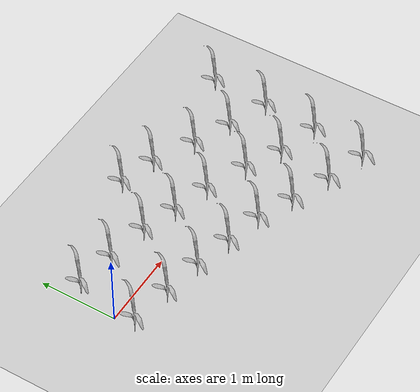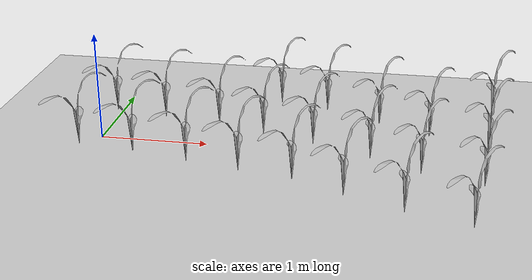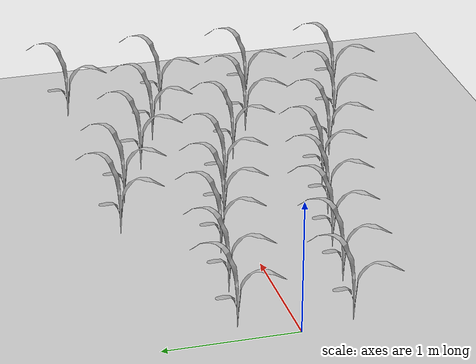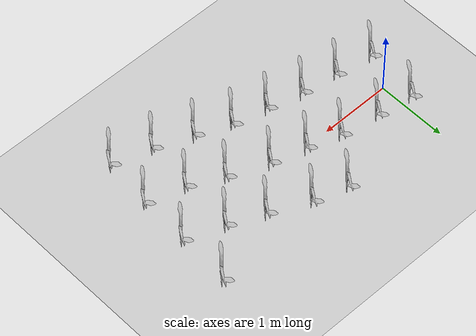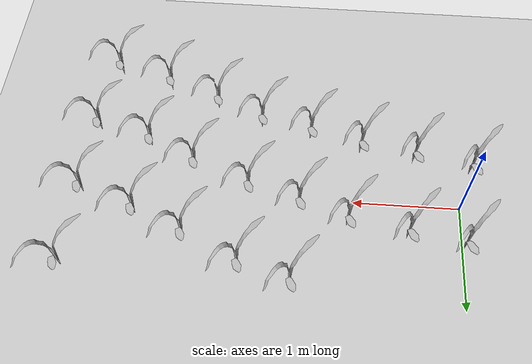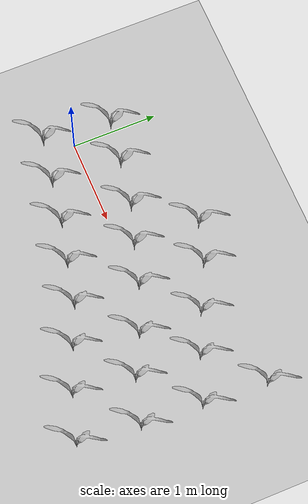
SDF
<sdf version="1.7">
 <world name="default">
  <model name="ground_plane">
   <static>1</static>
   <link name="link">
    <collision name="collision">
     <geometry><plane><normal>0 0 1</normal><size>100 100</size></plane></geometry>
     <surface>
      <contact><collide_bitmask>65535</collide_bitmask></contact>
      <friction><ode><mu>100</mu><mu2>50</mu2></ode></friction>
     </surface>
    </collision>
    <visual name="visual">
     <cast_shadows>0</cast_shadows>
     <geometry><plane><normal>0 0 1</normal><size>100 100</size></plane></geometry>
     <material>
      <script><uri>file://media/materials/scripts/gazebo.material</uri><name>Gazebo/Grey</name></script>
     </material>
    </visual>
   </link>
  </model>
  <model name="field_row_full_double">
   <model name="maize_02">
    <pose>-4.84632 -3.95774 0.000249 0 -0 0</pose>
    <link name="maize_02_link">
     <inertial>
      <pose>0 0 0.01 0 -0 0</pose>
      <mass>0.3</mass>
      <inertia>
       <ixx>0.00334167</ixx>
       <ixy>0</ixy>
       <ixz>0</ixz>
       <iyy>0.00334167</iyy>
       <iyz>0</iyz>
       <izz>1.66667e-05</izz>
      </inertia>
      <pose>0 0 0.1 0 -0 0</pose>
     </inertial>
     <collision name="collision">
      <pose>0 0 0.2 0 -0 0</pose>
      <geometry><box><size>0.02 0.02 0.4</size></box></geometry>
      <surface><friction><ode><mu>10</mu><mu2>10</mu2></ode></friction></surface>
     </collision>
     <visual name="visual">
      <geometry>
       <mesh><uri>model://maize_02/meshes/maize_02.dae</uri><scale>0.683166 0.683166 0.683166</scale></mesh>
      </geometry>
     </visual>
    </link>
   </model>
   <model name="maize_02_clone">
    <pose>-4.3125 -4.01112 0.000249 0 -0 0</pose>
    <link name="maize_02_link">
     <inertial>
      <pose>0 0 0.01 0 -0 0</pose>
      <mass>0.3</mass>
      <inertia>
       <ixx>0.00334167</ixx>
       <ixy>0</ixy>
       <ixz>0</ixz>
       <iyy>0.00334167</iyy>
       <iyz>0</iyz>
       <izz>1.66667e-05</izz>
      </inertia>
      <pose>0 0 0.1 0 -0 0</pose>
     </inertial>
     <collision name="collision">
      <pose>0 0 0.2 0 -0 0</pose>
      <geometry><box><size>0.02 0.02 0.4</size></box></geometry>
      <surface><friction><ode><mu>10</mu><mu2>10</mu2></ode></friction></surface>
     </collision>
     <visual name="visual">
      <geometry>
       <mesh><uri>model://maize_02/meshes/maize_02.dae</uri><scale>0.683166 0.683166 0.683166</scale></mesh>
      </geometry>
     </visual>
    </link>
   </model>
   <model name="maize_02_clone_0">
    <pose>-3.80156 -4.05688 0.000249 0 -0 0</pose>
    <link name="maize_02_link">
     <inertial>
      <pose>0 0 0.01 0 -0 0</pose>
      <mass>0.3</mass>
      <inertia>
       <ixx>0.00334167</ixx>
       <ixy>0</ixy>
       <ixz>0</ixz>
       <iyy>0.00334167</iyy>
       <iyz>0</iyz>
       <izz>1.66667e-05</izz>
      </inertia>
      <pose>0 0 0.1 0 -0 0</pose>
     </inertial>
     <collision name="collision">
      <pose>0 0 0.2 0 -0 0</pose>
      <geometry><box><size>0.02 0.02 0.4</size></box></geometry>
      <surface><friction><ode><mu>10</mu><mu2>10</mu2></ode></friction></surface>
     </collision>
     <visual name="visual">
      <geometry>
       <mesh><uri>model://maize_02/meshes/maize_02.dae</uri><scale>0.683166 0.683166 0.683166</scale></mesh>
      </geometry>
     </visual>
    </link>
   </model>
   <model name="maize_02_clone_1">
    <pose>-3.30717 -4.14016 0.000249 0 -0 0</pose>
    <link name="maize_02_link">
     <inertial>
      <pose>0 0 0.01 0 -0 0</pose>
      <mass>0.3</mass>
      <inertia>
       <ixx>0.00334167</ixx>
       <ixy>0</ixy>
       <ixz>0</ixz>
       <iyy>0.00334167</iyy>
       <iyz>0</iyz>
       <izz>1.66667e-05</izz>
      </inertia>
      <pose>0 0 0.1 0 -0 0</pose>
     </inertial>
     <collision name="collision">
      <pose>0 0 0.2 0 -0 0</pose>
      <geometry><box><size>0.02 0.02 0.4</size></box></geometry>
      <surface><friction><ode><mu>10</mu><mu2>10</mu2></ode></friction></surface>
     </collision>
     <visual name="visual">
      <geometry>
       <mesh><uri>model://maize_02/meshes/maize_02.dae</uri><scale>0.683166 0.683166 0.683166</scale></mesh>
      </geometry>
     </visual>
    </link>
   </model>
   <model name="maize_02_clone_10">
    <pose>-1.25683 -3.93716 0.000249 0 -0 0</pose>
    <link name="maize_02_link">
     <inertial>
      <pose>0 0 0.01 0 -0 0</pose>
      <mass>0.3</mass>
      <inertia>
       <ixx>0.00334167</ixx>
       <ixy>0</ixy>
       <ixz>0</ixz>
       <iyy>0.00334167</iyy>
       <iyz>0</iyz>
       <izz>1.66667e-05</izz>
      </inertia>
      <pose>0 0 0.1 0 -0 0</pose>
     </inertial>
     <collision name="collision">
      <pose>0 0 0.2 0 -0 0</pose>
      <geometry><box><size>0.02 0.02 0.4</size></box></geometry>
      <surface><friction><ode><mu>10</mu><mu2>10</mu2></ode></friction></surface>
     </collision>
     <visual name="visual">
      <geometry>
       <mesh><uri>model://maize_02/meshes/maize_02.dae</uri><scale>0.683166 0.683166 0.683166</scale></mesh>
      </geometry>
     </visual>
    </link>
   </model>
   <model name="maize_02_clone_11">
    <pose>-1.79479 -3.8255 0.000249 0 -0 0</pose>
    <link name="maize_02_link">
     <inertial>
      <pose>0 0 0.01 0 -0 0</pose>
      <mass>0.3</mass>
      <inertia>
       <ixx>0.00334167</ixx>
       <ixy>0</ixy>
       <ixz>0</ixz>
       <iyy>0.00334167</iyy>
       <iyz>0</iyz>
       <izz>1.66667e-05</izz>
      </inertia>
      <pose>0 0 0.1 0 -0 0</pose>
     </inertial>
     <collision name="collision">
      <pose>0 0 0.2 0 -0 0</pose>
      <geometry><box><size>0.02 0.02 0.4</size></box></geometry>
      <surface><friction><ode><mu>10</mu><mu2>10</mu2></ode></friction></surface>
     </collision>
     <visual name="visual">
      <geometry>
       <mesh><uri>model://maize_02/meshes/maize_02.dae</uri><scale>0.683166 0.683166 0.683166</scale></mesh>
      </geometry>
     </visual>
    </link>
   </model>
   <model name="maize_02_clone_12">
    <pose>-2.2617 -3.63265 0.000249 0 -0 0</pose>
    <link name="maize_02_link">
     <inertial>
      <pose>0 0 0.01 0 -0 0</pose>
      <mass>0.3</mass>
      <inertia>
       <ixx>0.00334167</ixx>
       <ixy>0</ixy>
       <ixz>0</ixz>
       <iyy>0.00334167</iyy>
       <iyz>0</iyz>
       <izz>1.66667e-05</izz>
      </inertia>
      <pose>0 0 0.1 0 -0 0</pose>
     </inertial>
     <collision name="collision">
      <pose>0 0 0.2 0 -0 0</pose>
      <geometry><box><size>0.02 0.02 0.4</size></box></geometry>
      <surface><friction><ode><mu>10</mu><mu2>10</mu2></ode></friction></surface>
     </collision>
     <visual name="visual">
      <geometry>
       <mesh><uri>model://maize_02/meshes/maize_02.dae</uri><scale>0.683166 0.683166 0.683166</scale></mesh>
      </geometry>
     </visual>
    </link>
   </model>
   <model name="maize_02_clone_13">
    <pose>-2.80981 -3.4601 0.000249 0 -0 0</pose>
    <link name="maize_02_link">
     <inertial>
      <pose>0 0 0.01 0 -0 0</pose>
      <mass>0.3</mass>
      <inertia>
       <ixx>0.00334167</ixx>
       <ixy>0</ixy>
       <ixz>0</ixz>
       <iyy>0.00334167</iyy>
       <iyz>0</iyz>
       <izz>1.66667e-05</izz>
      </inertia>
      <pose>0 0 0.1 0 -0 0</pose>
     </inertial>
     <collision name="collision">
      <pose>0 0 0.2 0 -0 0</pose>
      <geometry><box><size>0.02 0.02 0.4</size></box></geometry>
      <surface><friction><ode><mu>10</mu><mu2>10</mu2></ode></friction></surface>
     </collision>
     <visual name="visual">
      <geometry>
       <mesh><uri>model://maize_02/meshes/maize_02.dae</uri><scale>0.683166 0.683166 0.683166</scale></mesh>
      </geometry>
     </visual>
    </link>
   </model>
   <model name="maize_02_clone_14">
    <pose>-3.29702 -3.3586 0.000249 0 -0 0</pose>
    <link name="maize_02_link">
     <inertial>
      <pose>0 0 0.01 0 -0 0</pose>
      <mass>0.3</mass>
      <inertia>
       <ixx>0.00334167</ixx>
       <ixy>0</ixy>
       <ixz>0</ixz>
       <iyy>0.00334167</iyy>
       <iyz>0</iyz>
       <izz>1.66667e-05</izz>
      </inertia>
      <pose>0 0 0.1 0 -0 0</pose>
     </inertial>
     <collision name="collision">
      <pose>0 0 0.2 0 -0 0</pose>
      <geometry><box><size>0.02 0.02 0.4</size></box></geometry>
      <surface><friction><ode><mu>10</mu><mu2>10</mu2></ode></friction></surface>
     </collision>
     <visual name="visual">
      <geometry>
       <mesh><uri>model://maize_02/meshes/maize_02.dae</uri><scale>0.683166 0.683166 0.683166</scale></mesh>
      </geometry>
     </visual>
    </link>
   </model>
   <model name="maize_02_clone_15">
    <pose>-3.75377 -3.24694 0.000249 0 -0 0</pose>
    <link name="maize_02_link">
     <inertial>
      <pose>0 0 0.01 0 -0 0</pose>
      <mass>0.3</mass>
      <inertia>
       <ixx>0.00334167</ixx>
       <ixy>0</ixy>
       <ixz>0</ixz>
       <iyy>0.00334167</iyy>
       <iyz>0</iyz>
       <izz>1.66667e-05</izz>
      </inertia>
      <pose>0 0 0.1 0 -0 0</pose>
     </inertial>
     <collision name="collision">
      <pose>0 0 0.2 0 -0 0</pose>
      <geometry><box><size>0.02 0.02 0.4</size></box></geometry>
      <surface><friction><ode><mu>10</mu><mu2>10</mu2></ode></friction></surface>
     </collision>
     <visual name="visual">
      <geometry>
       <mesh><uri>model://maize_02/meshes/maize_02.dae</uri><scale>0.683166 0.683166 0.683166</scale></mesh>
      </geometry>
     </visual>
    </link>
   </model>
   <model name="maize_02_clone_16">
    <pose>-4.30188 -3.19619 0.000249 0 -0 0</pose>
    <link name="maize_02_link">
     <inertial>
      <pose>0 0 0.01 0 -0 0</pose>
      <mass>0.3</mass>
      <inertia>
       <ixx>0.00334167</ixx>
       <ixy>0</ixy>
       <ixz>0</ixz>
       <iyy>0.00334167</iyy>
       <iyz>0</iyz>
       <izz>1.66667e-05</izz>
      </inertia>
      <pose>0 0 0.1 0 -0 0</pose>
     </inertial>
     <collision name="collision">
      <pose>0 0 0.2 0 -0 0</pose>
      <geometry><box><size>0.02 0.02 0.4</size></box></geometry>
      <surface><friction><ode><mu>10</mu><mu2>10</mu2></ode></friction></surface>
     </collision>
     <visual name="visual">
      <geometry>
       <mesh><uri>model://maize_02/meshes/maize_02.dae</uri><scale>0.683166 0.683166 0.683166</scale></mesh>
      </geometry>
     </visual>
    </link>
   </model>
   <model name="maize_02_clone_17">
    <pose>-4.80939 -3.15559 0.000249 0 -0 0</pose>
    <link name="maize_02_link">
     <inertial>
      <pose>0 0 0.01 0 -0 0</pose>
      <mass>0.3</mass>
      <inertia>
       <ixx>0.00334167</ixx>
       <ixy>0</ixy>
       <ixz>0</ixz>
       <iyy>0.00334167</iyy>
       <iyz>0</iyz>
       <izz>1.66667e-05</izz>
      </inertia>
      <pose>0 0 0.1 0 -0 0</pose>
     </inertial>
     <collision name="collision">
      <pose>0 0 0.2 0 -0 0</pose>
      <geometry><box><size>0.02 0.02 0.4</size></box></geometry>
      <surface><friction><ode><mu>10</mu><mu2>10</mu2></ode></friction></surface>
     </collision>
     <visual name="visual">
      <geometry>
       <mesh><uri>model://maize_02/meshes/maize_02.dae</uri><scale>0.683166 0.683166 0.683166</scale></mesh>
      </geometry>
     </visual>
    </link>
   </model>
   <model name="maize_02_clone_2">
    <pose>-2.81996 -4.21121 0.000249 0 -0 0</pose>
    <link name="maize_02_link">
     <inertial>
      <pose>0 0 0.01 0 -0 0</pose>
      <mass>0.3</mass>
      <inertia>
       <ixx>0.00334167</ixx>
       <ixy>0</ixy>
       <ixz>0</ixz>
       <iyy>0.00334167</iyy>
       <iyz>0</iyz>
       <izz>1.66667e-05</izz>
      </inertia>
      <pose>0 0 0.1 0 -0 0</pose>
     </inertial>
     <collision name="collision">
      <pose>0 0 0.2 0 -0 0</pose>
      <geometry><box><size>0.02 0.02 0.4</size></box></geometry>
      <surface><friction><ode><mu>10</mu><mu2>10</mu2></ode></friction></surface>
     </collision>
     <visual name="visual">
      <geometry>
       <mesh><uri>model://maize_02/meshes/maize_02.dae</uri><scale>0.683166 0.683166 0.683166</scale></mesh>
      </geometry>
     </visual>
    </link>
   </model>
   <model name="maize_02_clone_20">
    <pose>-1.27713 -3.22664 0.000249 0 -0 0</pose>
    <link name="maize_02_link">
     <inertial>
      <pose>0 0 0.01 0 -0 0</pose>
      <mass>0.3</mass>
      <inertia>
       <ixx>0.00334167</ixx>
       <ixy>0</ixy>
       <ixz>0</ixz>
       <iyy>0.00334167</iyy>
       <iyz>0</iyz>
       <izz>1.66667e-05</izz>
      </inertia>
      <pose>0 0 0.1 0 -0 0</pose>
     </inertial>
     <collision name="collision">
      <pose>0 0 0.2 0 -0 0</pose>
      <geometry><box><size>0.02 0.02 0.4</size></box></geometry>
      <surface><friction><ode><mu>10</mu><mu2>10</mu2></ode></friction></surface>
     </collision>
     <visual name="visual">
      <geometry>
       <mesh><uri>model://maize_02/meshes/maize_02.dae</uri><scale>0.683166 0.683166 0.683166</scale></mesh>
      </geometry>
     </visual>
    </link>
   </model>
   <model name="maize_02_clone_21">
    <pose>-1.81509 -3.07439 0.000249 0 -0 0</pose>
    <link name="maize_02_link">
     <inertial>
      <pose>0 0 0.01 0 -0 0</pose>
      <mass>0.3</mass>
      <inertia>
       <ixx>0.00334167</ixx>
       <ixy>0</ixy>
       <ixz>0</ixz>
       <iyy>0.00334167</iyy>
       <iyz>0</iyz>
       <izz>1.66667e-05</izz>
      </inertia>
      <pose>0 0 0.1 0 -0 0</pose>
     </inertial>
     <collision name="collision">
      <pose>0 0 0.2 0 -0 0</pose>
      <geometry><box><size>0.02 0.02 0.4</size></box></geometry>
      <surface><friction><ode><mu>10</mu><mu2>10</mu2></ode></friction></surface>
     </collision>
     <visual name="visual">
      <geometry>
       <mesh><uri>model://maize_02/meshes/maize_02.dae</uri><scale>0.683166 0.683166 0.683166</scale></mesh>
      </geometry>
     </visual>
    </link>
   </model>
   <model name="maize_02_clone_22">
    <pose>-2.3023 -2.90184 0.000249 0 -0 0</pose>
    <link name="maize_02_link">
     <inertial>
      <pose>0 0 0.01 0 -0 0</pose>
      <mass>0.3</mass>
      <inertia>
       <ixx>0.00334167</ixx>
       <ixy>0</ixy>
       <ixz>0</ixz>
       <iyy>0.00334167</iyy>
       <iyz>0</iyz>
       <izz>1.66667e-05</izz>
      </inertia>
      <pose>0 0 0.1 0 -0 0</pose>
     </inertial>
     <collision name="collision">
      <pose>0 0 0.2 0 -0 0</pose>
      <geometry><box><size>0.02 0.02 0.4</size></box></geometry>
      <surface><friction><ode><mu>10</mu><mu2>10</mu2></ode></friction></surface>
     </collision>
     <visual name="visual">
      <geometry>
       <mesh><uri>model://maize_02/meshes/maize_02.dae</uri><scale>0.683166 0.683166 0.683166</scale></mesh>
      </geometry>
     </visual>
    </link>
   </model>
   <model name="maize_02_clone_23">
    <pose>-2.84026 -2.68868 0.000249 0 -0 0</pose>
    <link name="maize_02_link">
     <inertial>
      <pose>0 0 0.01 0 -0 0</pose>
      <mass>0.3</mass>
      <inertia>
       <ixx>0.00334167</ixx>
       <ixy>0</ixy>
       <ixz>0</ixz>
       <iyy>0.00334167</iyy>
       <iyz>0</iyz>
       <izz>1.66667e-05</izz>
      </inertia>
      <pose>0 0 0.1 0 -0 0</pose>
     </inertial>
     <collision name="collision">
      <pose>0 0 0.2 0 -0 0</pose>
      <geometry><box><size>0.02 0.02 0.4</size></box></geometry>
      <surface><friction><ode><mu>10</mu><mu2>10</mu2></ode></friction></surface>
     </collision>
     <visual name="visual">
      <geometry>
       <mesh><uri>model://maize_02/meshes/maize_02.dae</uri><scale>0.683166 0.683166 0.683166</scale></mesh>
      </geometry>
     </visual>
    </link>
   </model>
   <model name="maize_02_clone_24">
    <pose>-3.31731 -2.58718 0.000249 0 -0 0</pose>
    <link name="maize_02_link">
     <inertial>
      <pose>0 0 0.01 0 -0 0</pose>
      <mass>0.3</mass>
      <inertia>
       <ixx>0.00334167</ixx>
       <ixy>0</ixy>
       <ixz>0</ixz>
       <iyy>0.00334167</iyy>
       <iyz>0</iyz>
       <izz>1.66667e-05</izz>
      </inertia>
      <pose>0 0 0.1 0 -0 0</pose>
     </inertial>
     <collision name="collision">
      <pose>0 0 0.2 0 -0 0</pose>
      <geometry><box><size>0.02 0.02 0.4</size></box></geometry>
      <surface><friction><ode><mu>10</mu><mu2>10</mu2></ode></friction></surface>
     </collision>
     <visual name="visual">
      <geometry>
       <mesh><uri>model://maize_02/meshes/maize_02.dae</uri><scale>0.683166 0.683166 0.683166</scale></mesh>
      </geometry>
     </visual>
    </link>
   </model>
   <model name="maize_02_clone_3">
    <pose>-2.35305 -4.37361 0.000249 0 -0 0</pose>
    <link name="maize_02_link">
     <inertial>
      <pose>0 0 0.01 0 -0 0</pose>
      <mass>0.3</mass>
      <inertia>
       <ixx>0.00334167</ixx>
       <ixy>0</ixy>
       <ixz>0</ixz>
       <iyy>0.00334167</iyy>
       <iyz>0</iyz>
       <izz>1.66667e-05</izz>
      </inertia>
      <pose>0 0 0.1 0 -0 0</pose>
     </inertial>
     <collision name="collision">
      <pose>0 0 0.2 0 -0 0</pose>
      <geometry><box><size>0.02 0.02 0.4</size></box></geometry>
      <surface><friction><ode><mu>10</mu><mu2>10</mu2></ode></friction></surface>
     </collision>
     <visual name="visual">
      <geometry>
       <mesh><uri>model://maize_02/meshes/maize_02.dae</uri><scale>0.683166 0.683166 0.683166</scale></mesh>
      </geometry>
     </visual>
    </link>
   </model>
   <model name="maize_02_clone_35">
    <pose>-1.29743 -2.47553 0.000249 0 -0 0</pose>
    <link name="maize_02_link">
     <inertial>
      <pose>0 0 0.01 0 -0 0</pose>
      <mass>0.3</mass>
      <inertia>
       <ixx>0.00334167</ixx>
       <ixy>0</ixy>
       <ixz>0</ixz>
       <iyy>0.00334167</iyy>
       <iyz>0</iyz>
       <izz>1.66667e-05</izz>
      </inertia>
      <pose>0 0 0.1 0 -0 0</pose>
     </inertial>
     <collision name="collision">
      <pose>0 0 0.2 0 -0 0</pose>
      <geometry><box><size>0.02 0.02 0.4</size></box></geometry>
      <surface><friction><ode><mu>10</mu><mu2>10</mu2></ode></friction></surface>
     </collision>
     <visual name="visual">
      <geometry>
       <mesh><uri>model://maize_02/meshes/maize_02.dae</uri><scale>0.683166 0.683166 0.683166</scale></mesh>
      </geometry>
     </visual>
    </link>
   </model>
   <model name="maize_02_clone_4">
    <pose>-1.83539 -4.53602 0.000249 0 -0 0</pose>
    <link name="maize_02_link">
     <inertial>
      <pose>0 0 0.01 0 -0 0</pose>
      <mass>0.3</mass>
      <inertia>
       <ixx>0.00334167</ixx>
       <ixy>0</ixy>
       <ixz>0</ixz>
       <iyy>0.00334167</iyy>
       <iyz>0</iyz>
       <izz>1.66667e-05</izz>
      </inertia>
      <pose>0 0 0.1 0 -0 0</pose>
     </inertial>
     <collision name="collision">
      <pose>0 0 0.2 0 -0 0</pose>
      <geometry><box><size>0.02 0.02 0.4</size></box></geometry>
      <surface><friction><ode><mu>10</mu><mu2>10</mu2></ode></friction></surface>
     </collision>
     <visual name="visual">
      <geometry>
       <mesh><uri>model://maize_02/meshes/maize_02.dae</uri><scale>0.683166 0.683166 0.683166</scale></mesh>
      </geometry>
     </visual>
    </link>
   </model>
   <model name="maize_02_clone_5">
    <pose>-1.28728 -4.65782 0.000249 0 -0 0</pose>
    <link name="maize_02_link">
     <inertial>
      <pose>0 0 0.01 0 -0 0</pose>
      <mass>0.3</mass>
      <inertia>
       <ixx>0.00334167</ixx>
       <ixy>0</ixy>
       <ixz>0</ixz>
       <iyy>0.00334167</iyy>
       <iyz>0</iyz>
       <izz>1.66667e-05</izz>
      </inertia>
      <pose>0 0 0.1 0 -0 0</pose>
     </inertial>
     <collision name="collision">
      <pose>0 0 0.2 0 -0 0</pose>
      <geometry><box><size>0.02 0.02 0.4</size></box></geometry>
      <surface><friction><ode><mu>10</mu><mu2>10</mu2></ode></friction></surface>
     </collision>
     <visual name="visual">
      <geometry>
       <mesh><uri>model://maize_02/meshes/maize_02.dae</uri><scale>0.683166 0.683166 0.683166</scale></mesh>
      </geometry>
     </visual>
    </link>
   </model>
   <static>0</static>
   <pose>5.06014 3.21474 0.082285 6e-06 -5e-05 -0.080663</pose>
  </model>
 </world>
</sdf>
